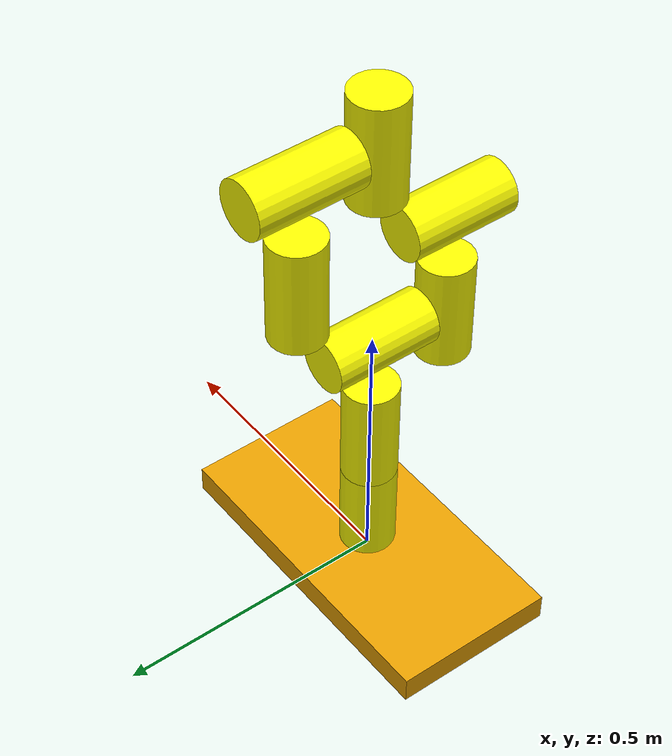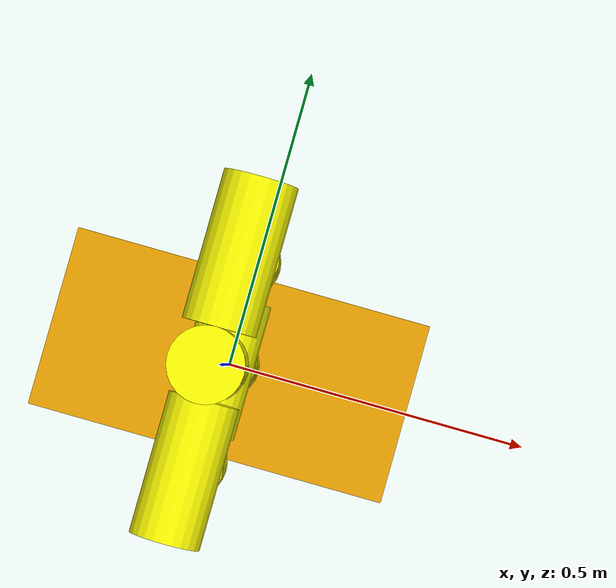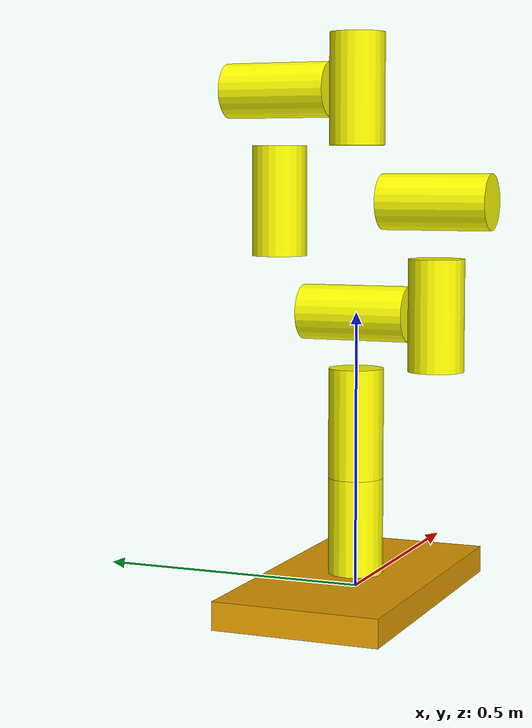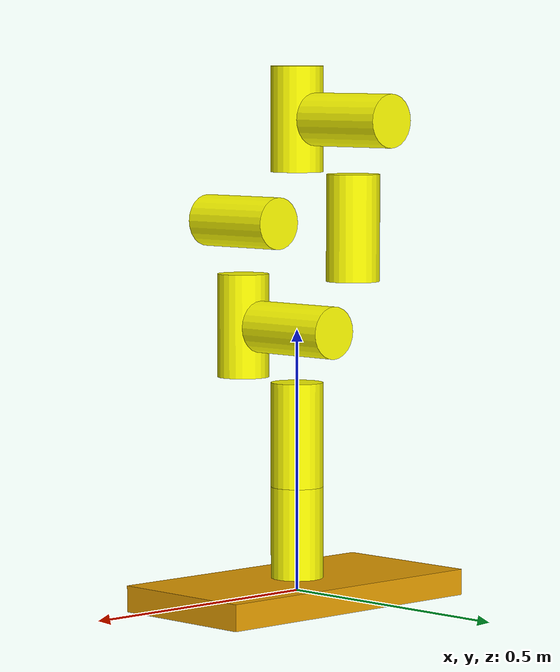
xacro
<?xml version="1.0"?>

<robot name="sliding_kuka" xmlns:xacro="http://wiki.ros.org/xacro">

<xacro:include filename="$(find kuka_robot_description)/urdf/sliding_kuka_macro.xacro"/>

<link name="slider">
	<visual>
		<geometry>
			<box size="0.6 0.3 0.05"/>
		</geometry>
       		<origin rpy="0 0 0" xyz="0 0 0"/>
       </visual>
</link>

<joint name="sliding_joint" type="prismatic">
    <parent link="slider"/>
    <child link="base_link"/>
       		<origin rpy="0 0 0" xyz="0 0 0.1"/>
    <limit effort="300" velocity="0.1" lower="-1" upper="1"/>
    <dynamics damping="50" friction="1"/>
</joint>

<xacro:whole_kuka_lw />

</robot>

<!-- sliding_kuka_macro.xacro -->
<robot  xmlns:xacro="http://wiki.ros.org/xacro">

	<xacro:macro name="whole_kuka_lw" >

<xacro:include filename="$(find kuka_robot_description)/urdf/kuka_lw_macro.xacro"/>

	<xacro:base_link_macro
		base_link_name="base_link">
	</xacro:base_link_macro>

	<xacro:general_joint
		name="shoulder_joint_1"
		type="revolute"
		parent="base_link"
		child="shoulder_link_1">
  		<origin xyz="0 0 0.2"/>
  		<axis xyz="0 0 1"/>
	</xacro:general_joint>

	<xacro:base_link_macro
		base_link_name="shoulder_link_1">
	</xacro:base_link_macro>

	<xacro:general_joint
		name="shoulder_joint_2"
		type="revolute"
		parent="shoulder_link_1"
		child="shoulder_link_2">
  		<origin xyz="0 0 0.2" rpy="1.57 0 0 "/>
  		<axis xyz="0 0 1"/>
	</xacro:general_joint>

	<xacro:base_link_macro
		base_link_name="shoulder_link_2">
	</xacro:base_link_macro>

	<xacro:general_joint
		name="shoulder_joint_3"
		type="revolute"
		parent="shoulder_link_2"
		child="shoulder_link_3">
  		<origin xyz="0 0 0.15" rpy="-1.57 0 0 "/>
  		<axis xyz="0 0 1"/>
	</xacro:general_joint>

	<xacro:base_link_macro
		base_link_name="shoulder_link_3">
	</xacro:base_link_macro>

	<xacro:general_joint
		name="elbow_joint_1"
		type="revolute"
		parent="shoulder_link_3"
		child="elbow_link">
  		<origin xyz="0 0 0.2" rpy="-1.57 0 0 "/>
  		<axis xyz="0 0 1"/>
	</xacro:general_joint>

	<xacro:base_link_macro
		base_link_name="elbow_link">
	</xacro:base_link_macro>

	<xacro:general_joint
		name="wrist_joint_1"
		type="revolute"
		parent="elbow_link"
		child="wrist_link_1">
  		<origin xyz="0 0 0.3" rpy="1.57 0 0 "/>
  		<axis xyz="0 0 1"/>
	</xacro:general_joint>

	<xacro:base_link_macro
		base_link_name="wrist_link_1">
	</xacro:base_link_macro>

	<xacro:general_joint
		name="wrist_joint_2"
		type="revolute"
		parent="wrist_link_1"
		child="wrist_link_2">
  		<origin xyz="0 0 0.2" rpy="1.57 0 0 "/>
  		<axis xyz="0 0 1"/>
	</xacro:general_joint>

	<xacro:base_link_macro
		base_link_name="wrist_link_2">
	</xacro:base_link_macro>

	<xacro:general_joint
		name="wrist_joint_3"
		type="revolute"
		parent="wrist_link_2"
		child="wrist_link_3">
  		<origin xyz="0 0 0.15" rpy="-1.57 0 0 "/>
  		<axis xyz="0 0 1"/>
	</xacro:general_joint>

	<xacro:base_link_macro
		base_link_name="wrist_link_3">
	</xacro:base_link_macro>
	</xacro:macro>
</robot>

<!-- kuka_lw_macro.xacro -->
<robot name="kuka_lw_macro" xmlns:xacro="http://wiki.ros.org/xacro">

<xacro:macro name="base_link_macro" params="base_link_name">
  <link name="${base_link_name}">
    <visual>
     	<geometry>
	 <cylinder length="0.2" radius="0.05"/>
        </geometry>
	<origin xyz= "0 0 0" rpy="0 0 0"/>
      <material name="yellow">
        <color rgba="1 1 0 1"/>
      </material>
    </visual>

    <collision>
      <geometry>
	<cylinder length="0.03" radius="0.2"/>
      </geometry>
      <origin rpy="0 0 0" xyz="0 0 0"/>
    </collision>
    <inertial>
	<mass value="1"/>
	<inertia ixx="1.0" ixy="0.0" ixz="0.0" iyy="1.0" iyz="0.0" izz="1.0"/>
    </inertial>
  </link>
</xacro:macro>

<xacro:macro name="general_joint" params="name type parent child *origin *axis">
  <joint name="${name}" type="${type}">
    <parent link="${parent}"/>
    <child link="${child}"/>
    <xacro:insert_block name="origin" />
    <xacro:insert_block name="axis" />
    <limit effort="300" velocity="0.1" lower="-3.14" upper="3.14"/>
    <dynamics damping="50" friction="1"/>
  </joint>
</xacro:macro>

</robot>
